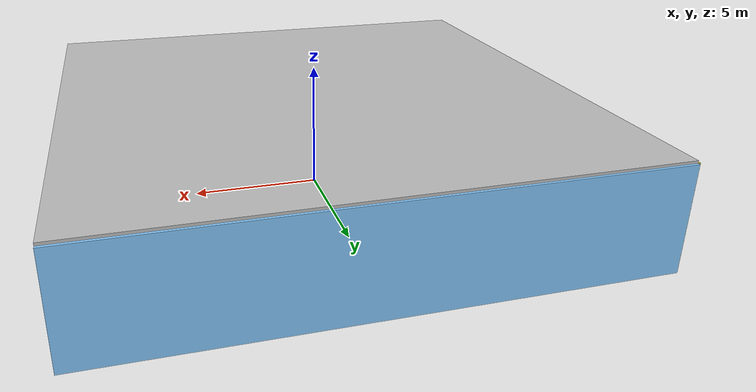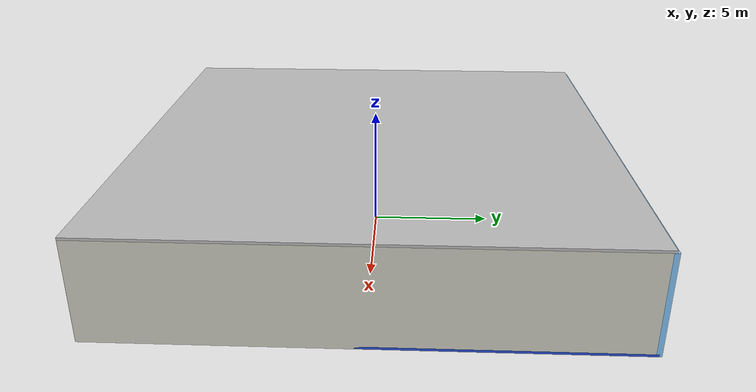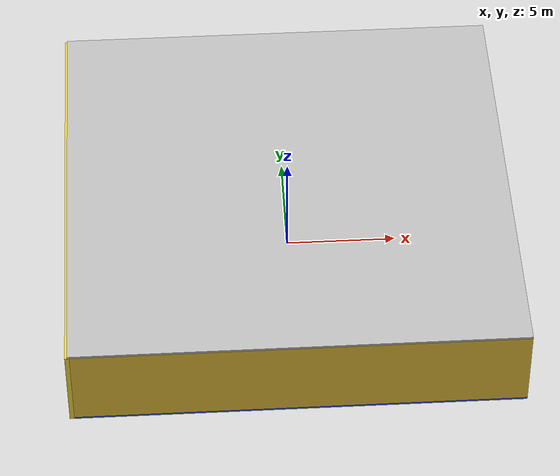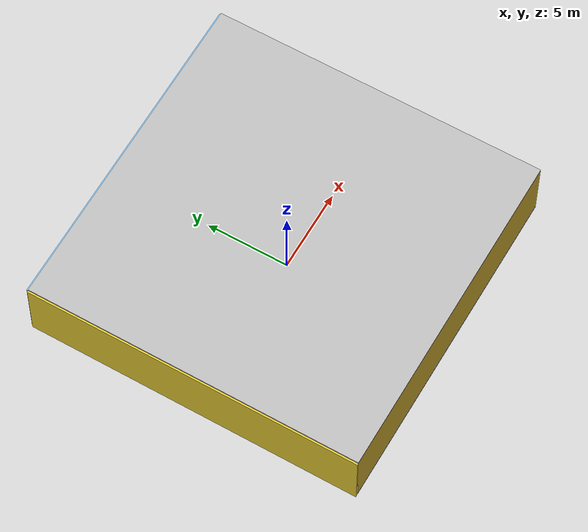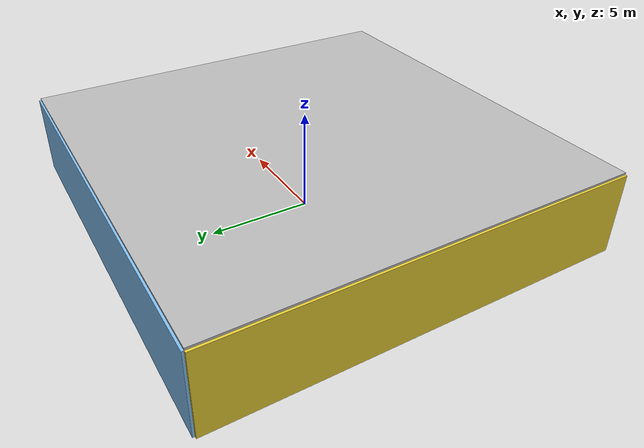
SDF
<sdf version="1.4">
 <world name="default">
  <physics type="ode">
   <max_step_size>0.001</max_step_size>
   <real_time_factor>1</real_time_factor>
   <real_time_update_rate>1000</real_time_update_rate>
   <gravity>0 0 -9.8</gravity>
  </physics>
  <scene><ambient>0.4 0.4 0.4 1</ambient><background>0.7 0.7 0.7 1</background><shadows>1</shadows></scene>
  <model name="Surrounding">
   <static>1</static>
   <link name="Ceiling">
    <collision name="Ceiling_Collision"><geometry><box><size>20 20 0.1</size></box></geometry></collision>
    <visual name="Ceiling_Visual">
     <geometry><box><size>20 20 0.1</size></box></geometry>
     <material>
      <script><uri>file://media/materials/scripts/gazebo.material</uri><name>Gazebo/LightOff</name></script>
     </material>
    </visual>
    <pose>0 0 4.05 0 0 0</pose>
   </link>
   <link name="Wall_South">
    <collision name="Wall_South_Collision">
     <geometry><box><size>20 0 4</size></box></geometry>
     <pose>0 0 2 0 -0 0</pose>
    </collision>
    <visual name="Wall_South_Visual">
     <pose>0 0 2 0 -0 0</pose>
     <geometry><box><size>20 0 4</size></box></geometry>
     <material>
      <script><uri>file://media/materials/scripts/gazebo.material</uri><name>Gazebo/Gold</name></script>
     </material>
    </visual>
    <velocity_decay><linear>0</linear><angular>0</angular></velocity_decay>
    <pose>0 -10 0 0 -0 0</pose>
   </link>
   <link name="Wall_East">
    <collision name="Wall_21_Collision">
     <geometry><box><size>20 0 4</size></box></geometry>
     <pose>0 0 2 0 -0 0</pose>
    </collision>
    <visual name="Wall_21_Visual">
     <pose>0 0 2 0 -0 0</pose>
     <geometry><box><size>20 0 4</size></box></geometry>
     <material>
      <script><uri>file://media/materials/scripts/gazebo.material</uri><name>Gazebo/PaintedWall</name></script>
     </material>
    </visual>
    <velocity_decay><linear>0</linear><angular>0</angular></velocity_decay>
    <pose>10 0 0 0 -0 1.5708</pose>
   </link>
   <link name="Wall_North">
    <collision name="Wall_22_Collision">
     <geometry><box><size>20 0.2 4</size></box></geometry>
     <pose>0 0 2 0 -0 0</pose>
    </collision>
    <visual name="Wall_22_Visual">
     <pose>0 0 2 0 -0 0</pose>
     <geometry><box><size>20 0.2 4</size></box></geometry>
     <material>
      <script><uri>file://media/materials/scripts/gazebo.material</uri><name>Gazebo/SkyBlue</name></script>
     </material>
    </visual>
    <velocity_decay><linear>0</linear><angular>0</angular></velocity_decay>
    <pose>0 10 0 0 -0 0</pose>
   </link>
   <link name="Wall_West">
    <collision name="Wall_23_Collision">
     <geometry><box><size>20 0.2 4</size></box></geometry>
     <pose>0 0 2 0 -0 0</pose>
    </collision>
    <visual name="Wall_23_Visual">
     <pose>0 0 2 0 -0 0</pose>
     <geometry><box><size>20 0.2 4</size></box></geometry>
     <material>
      <script><uri>file://media/materials/scripts/gazebo.material</uri><name>Gazebo/ZincYellow</name></script>
     </material>
    </visual>
    <velocity_decay><linear>0</linear><angular>0</angular></velocity_decay>
    <pose>-10 0 0 0 0 -1.5708</pose>
   </link>
   <link name="Ground_link">
    <collision name="collision">
     <pose>0 0 .05 0 -0 0</pose>
     <geometry><box><size>20 20 0.1</size></box></geometry>
    </collision>
    <visual name="visual">
     <pose>0 0 .05 0 -0 0</pose>
     <geometry><box><size>20 20 0.1</size></box></geometry>
     <material>
      <script><uri>file://media/materials/scripts/gazebo.material</uri><name>Gazebo/BlueLaser</name></script>
     </material>
    </visual>
   </link>
   <static>1</static>
  </model>
  <spherical_coordinates>
   <surface_model>EARTH_WGS84</surface_model>
   <latitude_deg>0</latitude_deg>
   <longitude_deg>0</longitude_deg>
   <elevation>0</elevation>
   <heading_deg>0</heading_deg>
  </spherical_coordinates>
  <light name="lightball_0" type="diffuse">
   <diffuse>0.8 0.8 0.8 1</diffuse>
   <specular>0.2 0.2 0.2 1</specular>
   <attenuation>
    <range>100</range>
    <constant>0.7</constant>
    <linear>0.01</linear>
    <quadratic>0.001</quadratic>
   </attenuation>
   <direction>-0.5 0.1 -0.9</direction>
   <pose>9.71597076787 2.94334896352 3.80857296669 0 0 0</pose>
  </light>
  <light name="lightball_1" type="diffuse">
   <diffuse>0.8 0.8 0.8 1</diffuse>
   <specular>0.2 0.2 0.2 1</specular>
   <attenuation>
    <range>100</range>
    <constant>0.7</constant>
    <linear>0.01</linear>
    <quadratic>0.001</quadratic>
   </attenuation>
   <direction>-0.5 0.1 -0.9</direction>
   <pose>6.94108699404 -2.72820077983 2.34236186153 0 0 0</pose>
  </light>
  <light name="lightball_2" type="diffuse">
   <diffuse>0.8 0.8 0.8 1</diffuse>
   <specular>0.2 0.2 0.2 1</specular>
   <attenuation>
    <range>100</range>
    <constant>0.7</constant>
    <linear>0.01</linear>
    <quadratic>0.001</quadratic>
   </attenuation>
   <direction>-0.5 0.1 -0.9</direction>
   <pose>9.19500598852 7.27450067719 2.05317554059 0 0 0</pose>
  </light>
  <light name="lightball_3" type="diffuse">
   <diffuse>0.8 0.8 0.8 1</diffuse>
   <specular>0.2 0.2 0.2 1</specular>
   <attenuation>
    <range>100</range>
    <constant>0.7</constant>
    <linear>0.01</linear>
    <quadratic>0.001</quadratic>
   </attenuation>
   <direction>-0.5 0.1 -0.9</direction>
   <pose>0.556905324904 -0.861127711779 1.52185536524 0 0 0</pose>
  </light>
  <include><uri>model://cabinet</uri><pose>-4.30297366494 -7.59211507432 0 0 0 2.03359402674</pose></include>
  <include>
   <uri>model://construction_cone</uri>
   <pose>4.35935888756 7.56471111261 0 0 0 2.64498390936</pose>
  </include>
 </world>
</sdf>

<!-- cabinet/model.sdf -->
<sdf version="1.5">
  <model name="cabinet">
    <static>true</static>
    <link name="cabinet_bottom_plate">
      <inertial>
        <pose>0 0 -1 0 0 0</pose>
        <inertia>
          <ixx>2.050000</ixx>
          <ixy>0</ixy>
          <ixz>0</ixz>
          <iyy>2.050000</iyy>
          <iyz>0</iyz>
          <izz>2.050000</izz>
        </inertia>
        <mass>25.000000</mass>
      </inertial>
      <collision name="cabinet_bottom_plate_geom">
        <pose>0 0 0.010000 0 0 0</pose>
        <geometry>
          <box>
            <size>0.450000 0.450000 0.020000</size>
          </box>
        </geometry>
      </collision>
      <visual name="cabinet_bottom_plate_geom_visual">
        <pose>0 0 0.010000 0 0 0</pose>
        <geometry>
          <box>
            <size>0.450000 0.450000 0.020000</size>
          </box>
        </geometry>
        <material>
          <script>
            <uri>model://media/materials/scripts/gazebo.material</uri>
            <name>Gazebo/Wood</name>
          </script>
        </material>
      </visual>
      <collision name="cabinet_bottom_plate_geom_cabinet_back_plate">
        <pose>0.235000 0 0.510000 0 0 0</pose>
        <geometry>
          <box>
            <size>0.020000 0.450000 1.020000</size>
          </box>
        </geometry>
      </collision>
      <visual name="cabinet_bottom_plate_geom_cabinet_back_plate_visual">
        <pose>0.235000 0 0.510000 0 0 0</pose>
        <geometry>
          <box>
            <size>0.020000 0.450000 1.020000</size>
          </box>
        </geometry>
        <material>
          <script>
            <uri>model://media/materials/scripts/gazebo.material</uri>
            <name>Gazebo/Wood</name>
          </script>
        </material>
      </visual>
      <collision name="cabinet_bottom_plate_geom_cabinet_left_plate">
        <pose>0 0.235000 0.510000 0 0 0</pose>
        <geometry>
          <box>
            <size>0.450000 0.020000 1.020000</size>
          </box>
        </geometry>
      </collision>
      <visual name="cabinet_bottom_plate_geom_cabinet_left_plate_visual">
        <pose>0 0.235000 0.510000 0 0 0</pose>
        <geometry>
          <box>
            <size>0.450000 0.020000 1.020000</size>
          </box>
        </geometry>
        <material>
          <script>
            <uri>model://media/materials/scripts/gazebo.material</uri>
            <name>Gazebo/Wood</name>
          </script>
        </material>
      </visual>
      <collision name="cabinet_bottom_plate_geom_cabinet_middle_plate">
        <pose>0 0 0.510000 0 0 0</pose>
        <geometry>
          <box>
            <size>0.450000 0.450000 0.020000</size>
          </box>
        </geometry>
      </collision>
      <visual name="cabinet_bottom_plate_geom_cabinet_middle_plate_visual">
        <pose>0 0 0.510000 0 0 0</pose>
        <geometry>
          <box>
            <size>0.450000 0.450000 0.020000</size>
          </box>
        </geometry>
        <material>
          <script>
            <uri>model://media/materials/scripts/gazebo.material</uri>
            <name>Gazebo/Wood</name>
          </script>
        </material>
      </visual>
      <collision name="cabinet_bottom_plate_geom_cabinet_right_plate">
        <pose>0 -0.235000 0.510000 0 0 0</pose>
        <geometry>
          <box>
            <size>0.450000 0.020000 1.020000</size>
          </box>
        </geometry>
      </collision>
      <visual name="cabinet_bottom_plate_geom_cabinet_right_plate_visual">
        <pose>0 -0.235000 0.510000 0 0 0</pose>
        <geometry>
          <box>
            <size>0.450000 0.020000 1.020000</size>
          </box>
        </geometry>
        <material>
          <script>
            <uri>model://media/materials/scripts/gazebo.material</uri>
            <name>Gazebo/Wood</name>
          </script>
        </material>
      </visual>
      <collision name="cabinet_bottom_plate_geom_cabinet_top_plate">
        <pose>0 0 1.010000 0 0 0</pose>
        <geometry>
          <box>
            <size>0.450000 0.450000 0.020000</size>
          </box>
        </geometry>
      </collision>
      <visual name="cabinet_bottom_plate_geom_cabinet_top_plate_visual">
        <pose>0 0 1.010000 0 0 0</pose>
        <geometry>
          <box>
            <size>0.450000 0.450000 0.020000</size>
          </box>
        </geometry>
        <material>
          <script>
            <uri>model://media/materials/scripts/gazebo.material</uri>
            <name>Gazebo/Wood</name>
          </script>
        </material>
      </visual>
    </link>
  </model>
</sdf>

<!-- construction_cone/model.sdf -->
<sdf version="1.5">
  <model name="Construction Cone">
    <link name="link">
      <collision name="collision">
        <geometry>
          <mesh>
            <scale>10 10 10</scale>
            <uri>file://isr-testbed/construction_cone/meshes/construction_cone.dae</uri>
          </mesh>
        </geometry>
      </collision>
      <visual name="visual">
        <geometry>
          <mesh>
            <scale>10 10 10</scale>
            <uri>file://isr-testbed/construction_cone/meshes/construction_cone.dae</uri>
          </mesh>
        </geometry>
      </visual>
    </link>
  </model>
</sdf>
